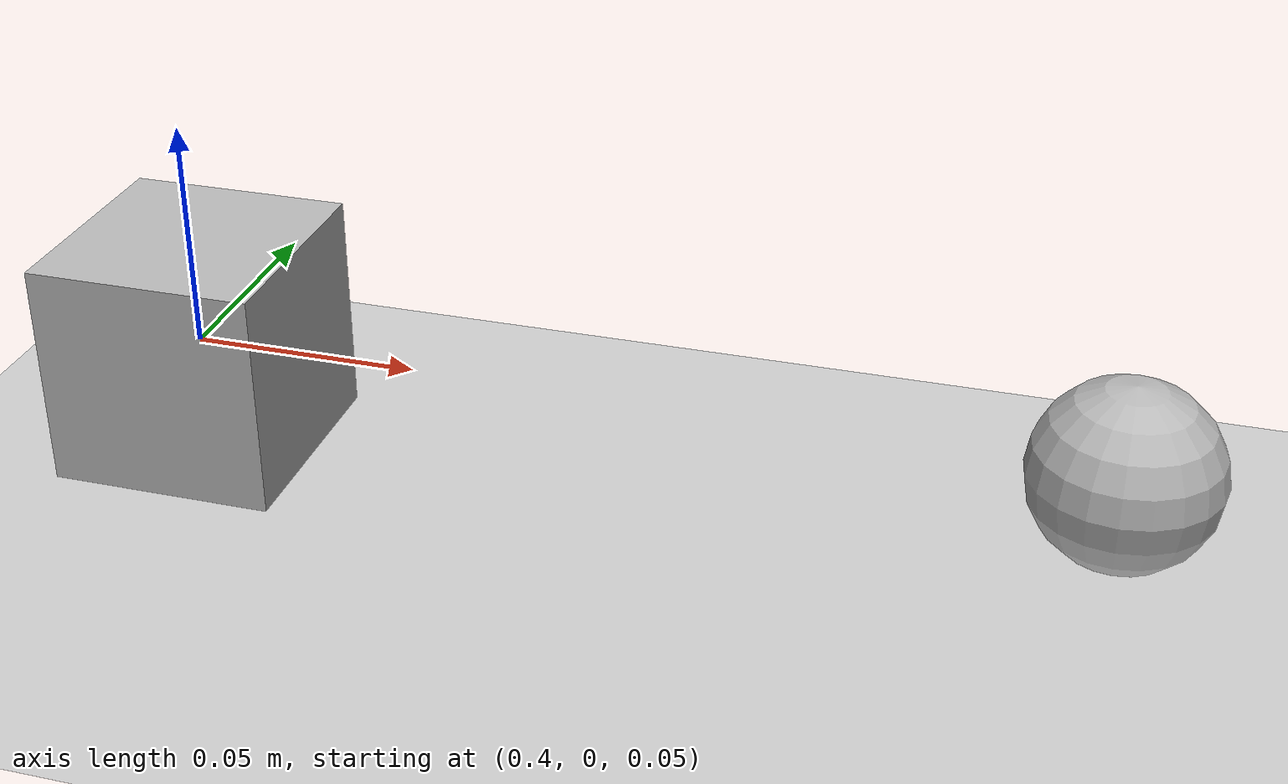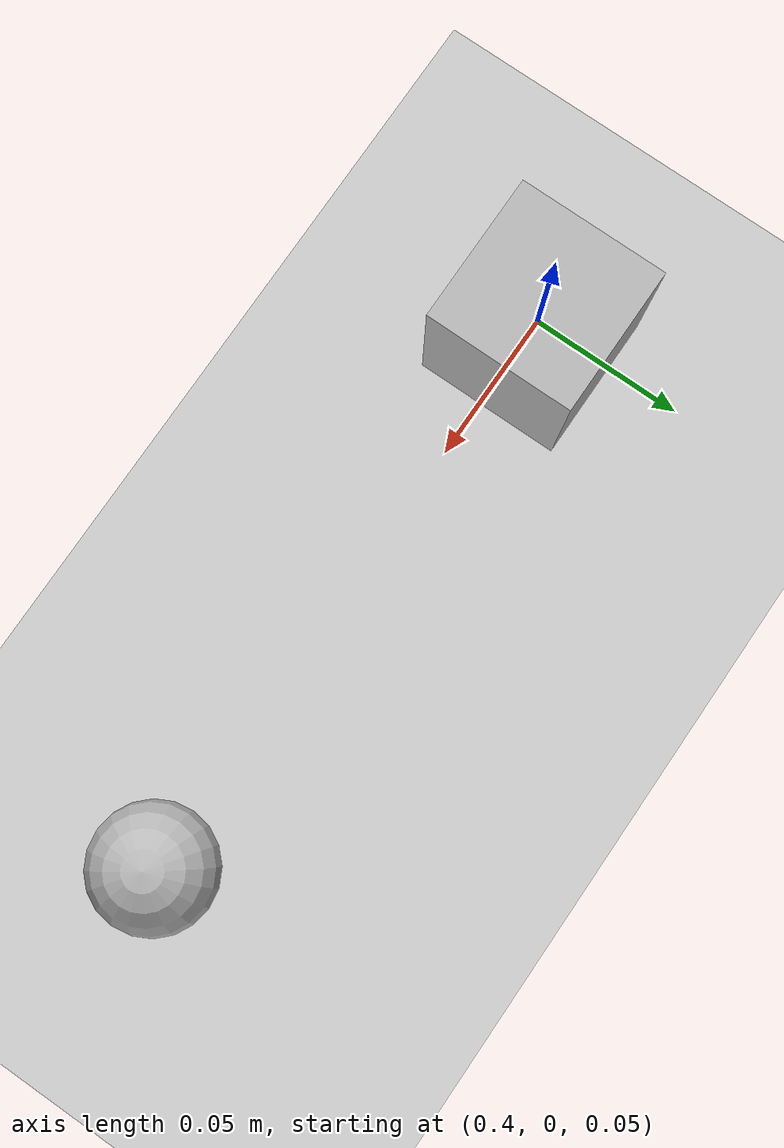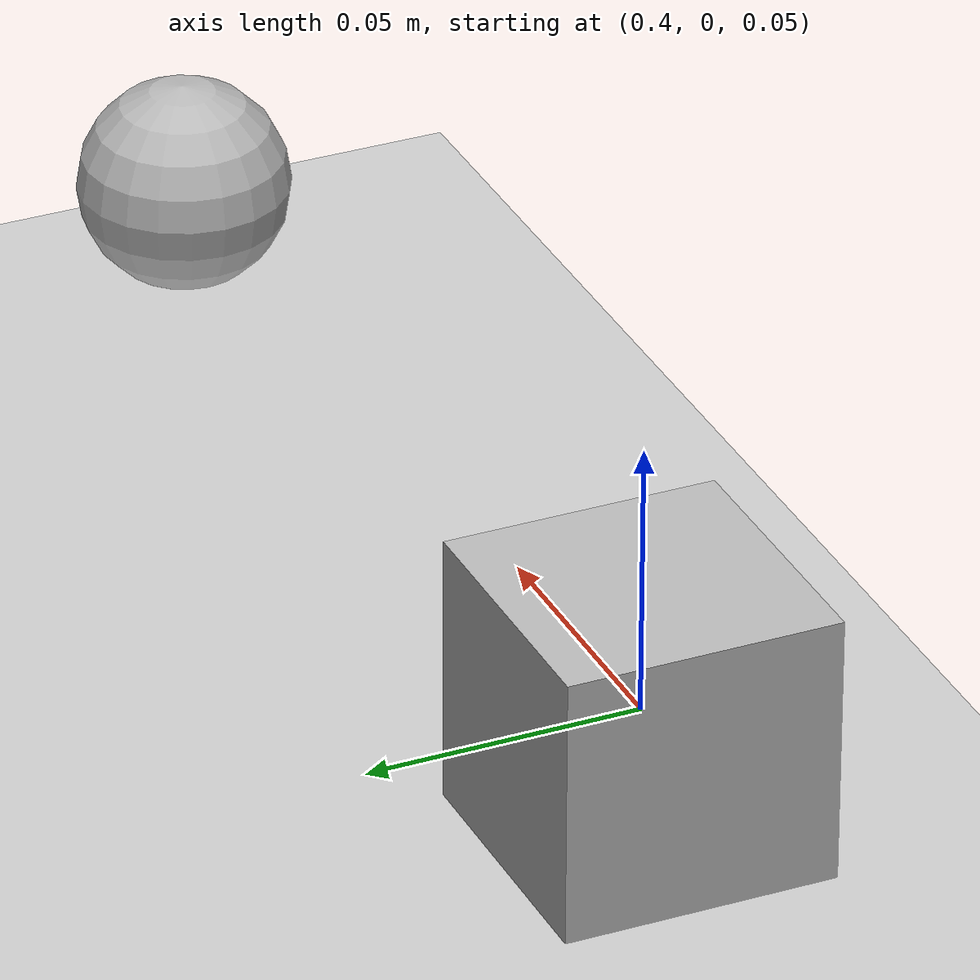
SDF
<sdf version="1.7">
  <world name="default">

    <!-- Simple light -->
    <light type="directional" name="sun">
      <direction>-0.5 0.5 -1</direction>
    </light>
    <plugin
  filename="gz_ros2_control-system"
  name="gz_ros2_control::GazeboSimROS2ControlPlugin">
  <parameters>$(find ur_simulation_gz)/config/ur_controllers.yaml</parameters>
  </plugin>

    <!-- Ground plane -->
    <model name="ground">
      <static>true</static>
      <link name="link">
        <collision name="collision">
          <geometry>
            <plane>
              <normal>0 0 1</normal>
              <size>10 10</size>
            </plane>
          </geometry>
        </collision>
        <visual name="visual">
          <geometry>
            <plane>
              <normal>0 0 1</normal>
              <size>10 10</size>
            </plane>
          </geometry>
        </visual>
      </link>
    </model>

    <!-- Cube -->
    <model name="cube">
      <pose>0.4 0 0.05 0 0 0</pose>
      <link name="link">
        <collision name="collision">
          <geometry>
            <box><size>0.05 0.05 0.05</size></box>
          </geometry>
        </collision>
        <visual name="visual">
          <geometry>
            <box><size>0.05 0.05 0.05</size></box>
          </geometry>
        </visual>
      </link>
    </model>

    <!-- Target marker -->
    <model name="target">
      <static>true</static>
      <pose>0.6 0 0.05 0 0 0</pose>
      <link name="link">
        <visual name="visual">
          <geometry>
            <sphere><radius>0.02</radius></sphere>
          </geometry>
        </visual>
      </link>
    </model>

  </world>
</sdf>
